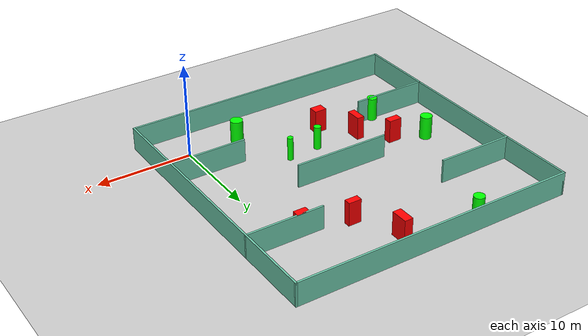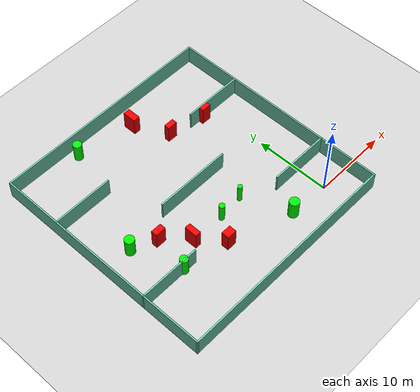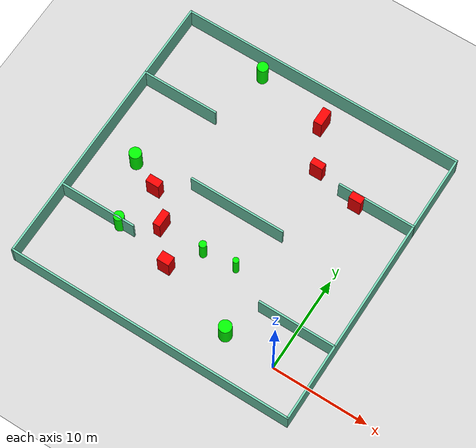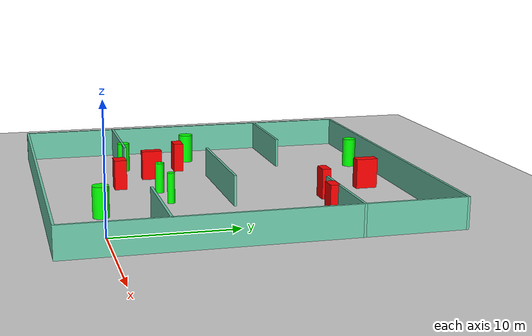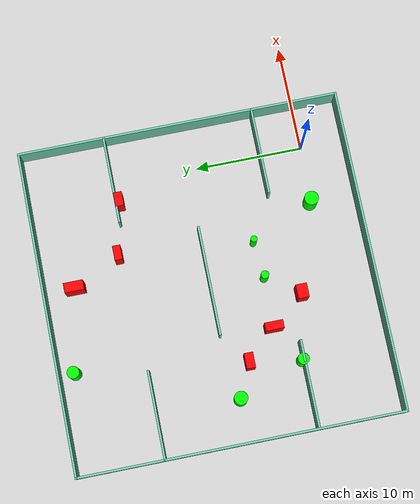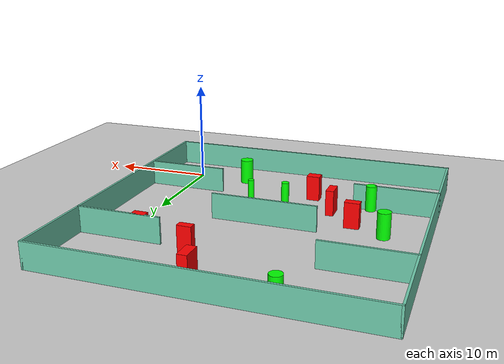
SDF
<sdf version="1.7">
 <world name="default">
  <light name="sun" type="directional">
   <pose>0 0 10 0 -0 0</pose>
   <diffuse>0.8 0.8 0.8 1</diffuse>
   <specular>0.2 0.2 0.2 1</specular>
   <attenuation>
    <range>1000</range>
    <constant>0.9</constant>
    <linear>0.01</linear>
    <quadratic>0.001</quadratic>
   </attenuation>
   <direction>-0.5 0.1 -0.9</direction>
   <spot><inner_angle>0</inner_angle><outer_angle>0</outer_angle><falloff>0</falloff></spot>
  </light>
  <model name="ground_plane">
   <static>1</static>
   <link name="link">
    <collision name="collision">
     <geometry><plane><normal>0 0 1</normal><size>100 100</size></plane></geometry>
     <surface>
      <contact><collide_bitmask>65535</collide_bitmask></contact>
      <friction><ode><mu>100</mu><mu2>50</mu2></ode></friction>
     </surface>
    </collision>
    <visual name="visual">
     <cast_shadows>0</cast_shadows>
     <geometry><plane><normal>0 0 1</normal><size>100 100</size></plane></geometry>
     <material>
      <script><uri>file://media/materials/scripts/gazebo.material</uri><name>Gazebo/Grey</name></script>
     </material>
    </visual>
   </link>
  </model>
  <gravity>0 0 -9.8</gravity>
  <magnetic_field>6e-06 2.3e-05 -4.2e-05</magnetic_field>
  <atmosphere type="adiabatic"/>
  <physics type="ode">
   <max_step_size>0.001</max_step_size>
   <real_time_factor>1</real_time_factor>
   <real_time_update_rate>1000</real_time_update_rate>
  </physics>
  <scene><ambient>0.4 0.4 0.4 1</ambient><background>0.7 0.7 0.7 1</background><shadows>1</shadows></scene>
  <spherical_coordinates>
   <surface_model>EARTH_WGS84</surface_model>
   <latitude_deg>0</latitude_deg>
   <longitude_deg>0</longitude_deg>
   <elevation>0</elevation>
   <heading_deg>0</heading_deg>
  </spherical_coordinates>
  <model name="my_base_walls">
   <link name="Wall_10">
    <collision name="Wall_10_Collision">
     <geometry><box><size>8.2 0.2 2.5</size></box></geometry>
     <pose>0 0 1.25 0 -0 0</pose>
    </collision>
    <visual name="Wall_10_Visual">
     <pose>0 0 1.25 0 -0 0</pose>
     <geometry><box><size>8.2 0.2 2.5</size></box></geometry>
     <material>
      <script><uri>file://media/materials/scripts/gazebo.material</uri><name>Gazebo/Grey</name></script>
      <ambient>0.435294 0.796078 0.67451 1</ambient>
     </material>
     <meta><layer>0</layer></meta>
    </visual>
    <pose>-11 -7 0 0 -0 0</pose>
   </link>
   <link name="Wall_12">
    <collision name="Wall_12_Collision">
     <geometry><box><size>8.2 0.2 2.5</size></box></geometry>
     <pose>0 0 1.25 0 -0 0</pose>
    </collision>
    <visual name="Wall_12_Visual">
     <pose>0 0 1.25 0 -0 0</pose>
     <geometry><box><size>8.2 0.2 2.5</size></box></geometry>
     <material>
      <script><uri>file://media/materials/scripts/gazebo.material</uri><name>Gazebo/Grey</name></script>
      <ambient>0.435294 0.796078 0.67451 1</ambient>
     </material>
     <meta><layer>0</layer></meta>
    </visual>
    <pose>-11 7 0 0 -0 0</pose>
   </link>
   <link name="Wall_14">
    <collision name="Wall_14_Collision">
     <geometry><box><size>8.2 0.2 2.5</size></box></geometry>
     <pose>0 0 1.25 0 -0 0</pose>
    </collision>
    <visual name="Wall_14_Visual">
     <pose>0 0 1.25 0 -0 0</pose>
     <geometry><box><size>8.2 0.2 2.5</size></box></geometry>
     <material>
      <script><uri>file://media/materials/scripts/gazebo.material</uri><name>Gazebo/Grey</name></script>
      <ambient>0.435294 0.796078 0.67451 1</ambient>
     </material>
     <meta><layer>0</layer></meta>
    </visual>
    <pose>11 7 0 0 -0 3.14159</pose>
   </link>
   <link name="Wall_16">
    <collision name="Wall_16_Collision">
     <geometry><box><size>10.2 0.2 2.5</size></box></geometry>
     <pose>0 0 1.25 0 -0 0</pose>
    </collision>
    <visual name="Wall_16_Visual">
     <pose>0 0 1.25 0 -0 0</pose>
     <geometry><box><size>10.2 0.2 2.5</size></box></geometry>
     <material>
      <script><uri>file://media/materials/scripts/gazebo.material</uri><name>Gazebo/Grey</name></script>
      <ambient>0.435294 0.796078 0.67451 1</ambient>
     </material>
     <meta><layer>0</layer></meta>
    </visual>
    <pose>0 0 0 0 -0 3.14159</pose>
   </link>
   <link name="Wall_2">
    <collision name="Wall_2_Collision">
     <geometry><box><size>30.2 0.2 2.5</size></box></geometry>
     <pose>0 0 1.25 0 -0 0</pose>
    </collision>
    <visual name="Wall_2_Visual">
     <pose>0 0 1.25 0 -0 0</pose>
     <geometry><box><size>30.2 0.2 2.5</size></box></geometry>
     <material>
      <script><uri>file://media/materials/scripts/gazebo.material</uri><name>Gazebo/Grey</name></script>
      <ambient>0.435294 0.796078 0.67451 1</ambient>
     </material>
     <meta><layer>0</layer></meta>
    </visual>
    <pose>0 -15 0 0 -0 3.14159</pose>
   </link>
   <link name="Wall_3">
    <collision name="Wall_3_Collision">
     <geometry><box><size>30.2 0.2 2.5</size></box></geometry>
     <pose>0 0 1.25 0 -0 0</pose>
    </collision>
    <visual name="Wall_3_Visual">
     <pose>0 0 1.25 0 -0 0</pose>
     <geometry><box><size>30.2 0.2 2.5</size></box></geometry>
     <material>
      <script><uri>file://media/materials/scripts/gazebo.material</uri><name>Gazebo/Grey</name></script>
      <ambient>0.435294 0.796078 0.67451 1</ambient>
     </material>
     <meta><layer>0</layer></meta>
    </visual>
    <pose>-15 0 0 0 -0 1.5708</pose>
   </link>
   <link name="Wall_4">
    <collision name="Wall_4_Collision">
     <geometry><box><size>30.2 0.2 2.5</size></box></geometry>
     <pose>0 0 1.25 0 -0 0</pose>
    </collision>
    <visual name="Wall_4_Visual">
     <pose>0 0 1.25 0 -0 0</pose>
     <geometry><box><size>30.2 0.2 2.5</size></box></geometry>
     <material>
      <script><uri>file://media/materials/scripts/gazebo.material</uri><name>Gazebo/Grey</name></script>
      <ambient>0.435294 0.796078 0.67451 1</ambient>
     </material>
     <meta><layer>0</layer></meta>
    </visual>
    <pose>0 15 0 0 -0 0</pose>
   </link>
   <link name="Wall_6">
    <collision name="Wall_6_Collision">
     <geometry><box><size>30.2 0.2 2.5</size></box></geometry>
     <pose>0 0 1.25 0 -0 0</pose>
    </collision>
    <visual name="Wall_6_Visual">
     <pose>0 0 1.25 0 -0 0</pose>
     <geometry><box><size>30.2 0.2 2.5</size></box></geometry>
     <material>
      <script><uri>file://media/materials/scripts/gazebo.material</uri><name>Gazebo/Grey</name></script>
      <ambient>0.435294 0.796078 0.67451 1</ambient>
     </material>
     <meta><layer>0</layer></meta>
    </visual>
    <pose>15 0 0 0 -0 1.5708</pose>
   </link>
   <link name="Wall_8">
    <collision name="Wall_8_Collision">
     <geometry><box><size>8.2 0.2 2.5</size></box></geometry>
     <pose>0 0 1.25 0 -0 0</pose>
    </collision>
    <visual name="Wall_8_Visual">
     <pose>0 0 1.25 0 -0 0</pose>
     <geometry><box><size>8.2 0.2 2.5</size></box></geometry>
     <material>
      <script><uri>file://media/materials/scripts/gazebo.material</uri><name>Gazebo/Grey</name></script>
      <ambient>0.435294 0.796078 0.67451 1</ambient>
     </material>
     <meta><layer>0</layer></meta>
    </visual>
    <pose>11 -7 0 0 -0 3.14159</pose>
   </link>
   <static>1</static>
   <pose>-11 11 0 0 -0 0</pose>
  </model>
  <model name="cylinder1">
   <static>1</static>
   <link name="link">
    <inertial>
     <mass>1</mass>
     <inertia><ixx>0.5</ixx><ixy>0</ixy><ixz>0</ixz><iyy>0.5</iyy><iyz>0</iyz><izz>1</izz></inertia>
    </inertial>
    <collision name="collision">
     <geometry><cylinder><radius>0.3730762869849059</radius><length>2.5</length></cylinder></geometry>
    </collision>
    <visual name="visual">
     <geometry><cylinder><radius>0.3730762869849059</radius><length>2.5</length></cylinder></geometry>
     <material>
      <ambient>0 1 0 1</ambient>
      <diffuse>0 1 0 1</diffuse>
      <specular>0.1 0.1 0.1 1</specular>
      <emissive>0 0 0 0</emissive>
     </material>
    </visual>
   </link>
   <pose>-11.490873782057275 5.931887154474213 1.25 0 0 0</pose>
  </model>
  <model name="cylinder2">
   <static>1</static>
   <link name="link">
    <inertial>
     <mass>1</mass>
     <inertia><ixx>0.5</ixx><ixy>0</ixy><ixz>0</ixz><iyy>0.5</iyy><iyz>0</iyz><izz>1</izz></inertia>
    </inertial>
    <collision name="collision">
     <geometry><cylinder><radius>0.6273101442669924</radius><length>2.5</length></cylinder></geometry>
    </collision>
    <visual name="visual">
     <geometry><cylinder><radius>0.6273101442669924</radius><length>2.5</length></cylinder></geometry>
     <material>
      <ambient>0 1 0 1</ambient>
      <diffuse>0 1 0 1</diffuse>
      <specular>0.1 0.1 0.1 1</specular>
      <emissive>0 0 0 0</emissive>
     </material>
    </visual>
   </link>
   <pose>-21.984022544344818 10.30179704821414 1.25 0 0 0</pose>
  </model>
  <model name="cylinder3">
   <static>1</static>
   <link name="link">
    <inertial>
     <mass>1</mass>
     <inertia><ixx>0.5</ixx><ixy>0</ixy><ixz>0</ixz><iyy>0.5</iyy><iyz>0</iyz><izz>1</izz></inertia>
    </inertial>
    <collision name="collision">
     <geometry><cylinder><radius>0.30185552526577414</radius><length>2.5</length></cylinder></geometry>
    </collision>
    <visual name="visual">
     <geometry><cylinder><radius>0.30185552526577414</radius><length>2.5</length></cylinder></geometry>
     <material>
      <ambient>0 1 0 1</ambient>
      <diffuse>0 1 0 1</diffuse>
      <specular>0.1 0.1 0.1 1</specular>
      <emissive>0 0 0 0</emissive>
     </material>
    </visual>
   </link>
   <pose>-8.057896033482724 6.241363151426562 1.25 0 0 0</pose>
  </model>
  <model name="cylinder4">
   <static>1</static>
   <link name="link">
    <inertial>
     <mass>1</mass>
     <inertia><ixx>0.5</ixx><ixy>0</ixy><ixz>0</ixz><iyy>0.5</iyy><iyz>0</iyz><izz>1</izz></inertia>
    </inertial>
    <collision name="collision">
     <geometry><cylinder><radius>0.5289302469172833</radius><length>2.5</length></cylinder></geometry>
    </collision>
    <visual name="visual">
     <geometry><cylinder><radius>0.5289302469172833</radius><length>2.5</length></cylinder></geometry>
     <material>
      <ambient>0 1 0 1</ambient>
      <diffuse>0 1 0 1</diffuse>
      <specular>0.1 0.1 0.1 1</specular>
      <emissive>0 0 0 0</emissive>
     </material>
    </visual>
   </link>
   <pose>-19.64293978600282 4.093646036543263 1.25 0 0 0</pose>
  </model>
  <model name="cylinder5">
   <static>1</static>
   <link name="link">
    <inertial>
     <mass>1</mass>
     <inertia><ixx>0.5</ixx><ixy>0</ixy><ixz>0</ixz><iyy>0.5</iyy><iyz>0</iyz><izz>1</izz></inertia>
    </inertial>
    <collision name="collision">
     <geometry><cylinder><radius>0.5672941519469687</radius><length>2.5</length></cylinder></geometry>
    </collision>
    <visual name="visual">
     <geometry><cylinder><radius>0.5672941519469687</radius><length>2.5</length></cylinder></geometry>
     <material>
      <ambient>0 1 0 1</ambient>
      <diffuse>0 1 0 1</diffuse>
      <specular>0.1 0.1 0.1 1</specular>
      <emissive>0 0 0 0</emissive>
     </material>
    </visual>
   </link>
   <pose>-16.781902433050973 24.589876241971346 1.25 0 0 0</pose>
  </model>
  <model name="cylinder6">
   <static>1</static>
   <link name="link">
    <inertial>
     <mass>1</mass>
     <inertia><ixx>0.5</ixx><ixy>0</ixy><ixz>0</ixz><iyy>0.5</iyy><iyz>0</iyz><izz>1</izz></inertia>
    </inertial>
    <collision name="collision">
     <geometry><cylinder><radius>0.6562590199418266</radius><length>2.5</length></cylinder></geometry>
    </collision>
    <visual name="visual">
     <geometry><cylinder><radius>0.6562590199418266</radius><length>2.5</length></cylinder></geometry>
     <material>
      <ambient>0 1 0 1</ambient>
      <diffuse>0 1 0 1</diffuse>
      <specular>0.1 0.1 0.1 1</specular>
      <emissive>0 0 0 0</emissive>
     </material>
    </visual>
   </link>
   <pose>-5.360620987960225 0.2765950431054853 1.25 0 0 0</pose>
  </model>
  <model name="box1">
   <static>1</static>
   <link name="link">
    <inertial>
     <mass>1</mass>
     <inertia><ixx>0.083</ixx><ixy>0</ixy><ixz>0</ixz><iyy>0.083</iyy><iyz>0</iyz><izz>0.083</izz></inertia>
    </inertial>
    <collision name="collision">
     <geometry><box><size>0.7678825728908871 1.7003893049028576 2.5</size></box></geometry>
    </collision>
    <visual name="visual">
     <geometry><box><size>0.7678825728908871 1.7003893049028576 2.5</size></box></geometry>
     <material>
      <ambient>1 0 0 1</ambient>
      <diffuse>1 0 0 1</diffuse>
      <specular>0.1 0.1 0.1 1</specular>
      <emissive>0 0 0 0</emissive>
     </material>
    </visual>
    <sensor name="my_contact" type="contact">
     <contact><collision>box_collision</collision><topic>__default_topic__</topic></contact>
    </sensor>
   </link>
   <pose>-16.18944872900861 6.046354833701626 1.25 0 0 0</pose>
  </model>
  <model name="box2">
   <static>1</static>
   <link name="link">
    <inertial>
     <mass>1</mass>
     <inertia><ixx>0.083</ixx><ixy>0</ixy><ixz>0</ixz><iyy>0.083</iyy><iyz>0</iyz><izz>0.083</izz></inertia>
    </inertial>
    <collision name="collision">
     <geometry><box><size>1.3140050460694068 0.7715895308296145 2.5</size></box></geometry>
    </collision>
    <visual name="visual">
     <geometry><box><size>1.3140050460694068 0.7715895308296145 2.5</size></box></geometry>
     <material>
      <ambient>1 0 0 1</ambient>
      <diffuse>1 0 0 1</diffuse>
      <specular>0.1 0.1 0.1 1</specular>
      <emissive>0 0 0 0</emissive>
     </material>
    </visual>
    <sensor name="my_contact" type="contact">
     <contact><collision>box_collision</collision><topic>__default_topic__</topic></contact>
    </sensor>
   </link>
   <pose>-1.954499724344469 17.675292457251395 1.25 0 0 0</pose>
  </model>
  <model name="box3">
   <static>1</static>
   <link name="link">
    <inertial>
     <mass>1</mass>
     <inertia><ixx>0.083</ixx><ixy>0</ixy><ixz>0</ixz><iyy>0.083</iyy><iyz>0</iyz><izz>0.083</izz></inertia>
    </inertial>
    <collision name="collision">
     <geometry><box><size>0.8989180817272011 1.8041384299219705 2.5</size></box></geometry>
    </collision>
    <visual name="visual">
     <geometry><box><size>0.8989180817272011 1.8041384299219705 2.5</size></box></geometry>
     <material>
      <ambient>1 0 0 1</ambient>
      <diffuse>1 0 0 1</diffuse>
      <specular>0.1 0.1 0.1 1</specular>
      <emissive>0 0 0 0</emissive>
     </material>
    </visual>
    <sensor name="my_contact" type="contact">
     <contact><collision>box_collision</collision><topic>__default_topic__</topic></contact>
    </sensor>
   </link>
   <pose>-9.123159415816666 23.16291915869019 1.25 0 0 0</pose>
  </model>
  <model name="box4">
   <static>1</static>
   <link name="link">
    <inertial>
     <mass>1</mass>
     <inertia><ixx>0.083</ixx><ixy>0</ixy><ixz>0</ixz><iyy>0.083</iyy><iyz>0</iyz><izz>0.083</izz></inertia>
    </inertial>
    <collision name="collision">
     <geometry><box><size>1.418437047459164 0.818223705261464 2.5</size></box></geometry>
    </collision>
    <visual name="visual">
     <geometry><box><size>1.418437047459164 0.818223705261464 2.5</size></box></geometry>
     <material>
      <ambient>1 0 0 1</ambient>
      <diffuse>1 0 0 1</diffuse>
      <specular>0.1 0.1 0.1 1</specular>
      <emissive>0 0 0 0</emissive>
     </material>
    </visual>
    <sensor name="my_contact" type="contact">
     <contact><collision>box_collision</collision><topic>__default_topic__</topic></contact>
    </sensor>
   </link>
   <pose>-18.845290318610072 8.859946705229655 1.25 0 0 0</pose>
  </model>
  <model name="box5">
   <static>1</static>
   <link name="link">
    <inertial>
     <mass>1</mass>
     <inertia><ixx>0.083</ixx><ixy>0</ixy><ixz>0</ixz><iyy>0.083</iyy><iyz>0</iyz><izz>0.083</izz></inertia>
    </inertial>
    <collision name="collision">
     <geometry><box><size>1.352310110450013 0.7176143317352442 2.5</size></box></geometry>
    </collision>
    <visual name="visual">
     <geometry><box><size>1.352310110450013 0.7176143317352442 2.5</size></box></geometry>
     <material>
      <ambient>1 0 0 1</ambient>
      <diffuse>1 0 0 1</diffuse>
      <specular>0.1 0.1 0.1 1</specular>
      <emissive>0 0 0 0</emissive>
     </material>
    </visual>
    <sensor name="my_contact" type="contact">
     <contact><collision>box_collision</collision><topic>__default_topic__</topic></contact>
    </sensor>
   </link>
   <pose>-6.857656075624341 18.70645983172757 1.25 0 0 0</pose>
  </model>
  <model name="box6">
   <static>1</static>
   <link name="link">
    <inertial>
     <mass>1</mass>
     <inertia><ixx>0.083</ixx><ixy>0</ixy><ixz>0</ixz><iyy>0.083</iyy><iyz>0</iyz><izz>0.083</izz></inertia>
    </inertial>
    <collision name="collision">
     <geometry><box><size>1.2903462243255517 1.018039418998008 2.5</size></box></geometry>
    </collision>
    <visual name="visual">
     <geometry><box><size>1.2903462243255517 1.018039418998008 2.5</size></box></geometry>
     <material>
      <ambient>1 0 0 1</ambient>
      <diffuse>1 0 0 1</diffuse>
      <specular>0.1 0.1 0.1 1</specular>
      <emissive>0 0 0 0</emissive>
     </material>
    </visual>
    <sensor name="my_contact" type="contact">
     <contact><collision>box_collision</collision><topic>__default_topic__</topic></contact>
    </sensor>
   </link>
   <pose>-13.605412132498707 2.8997127331290233 1.25 0 0 0</pose>
  </model>
 </world>
</sdf>
